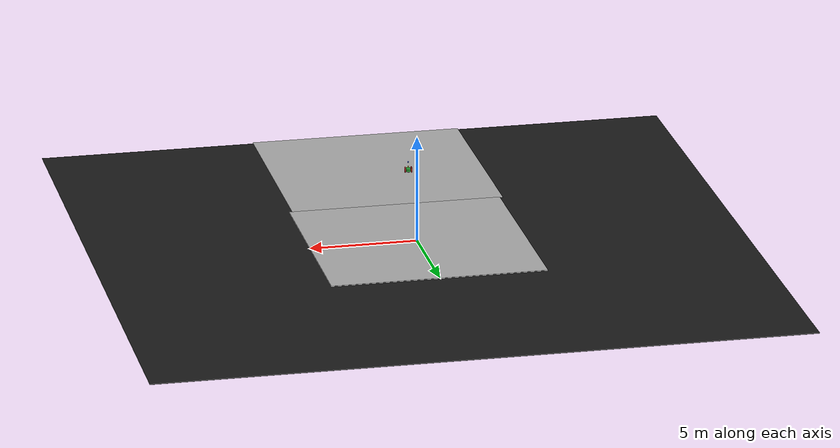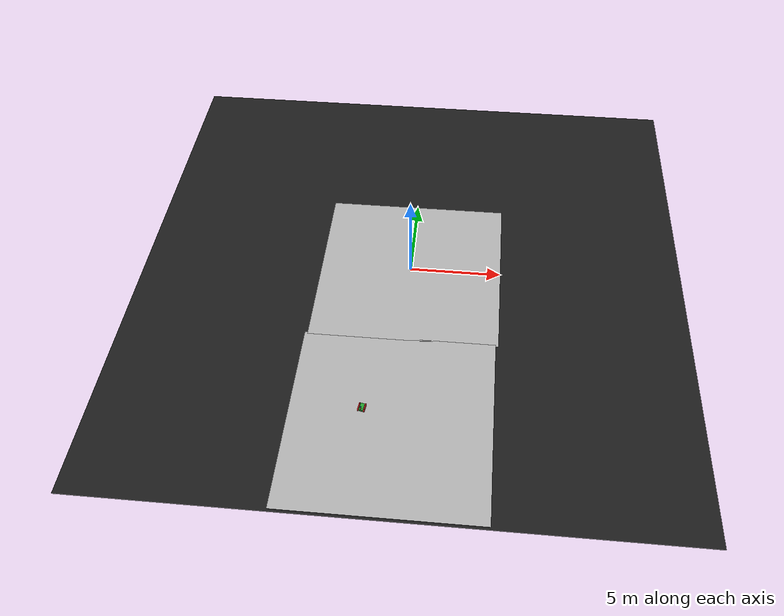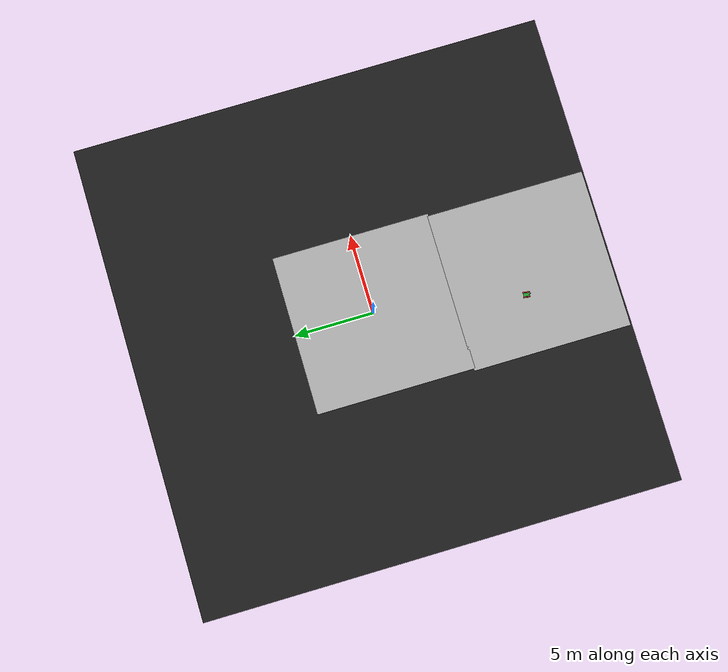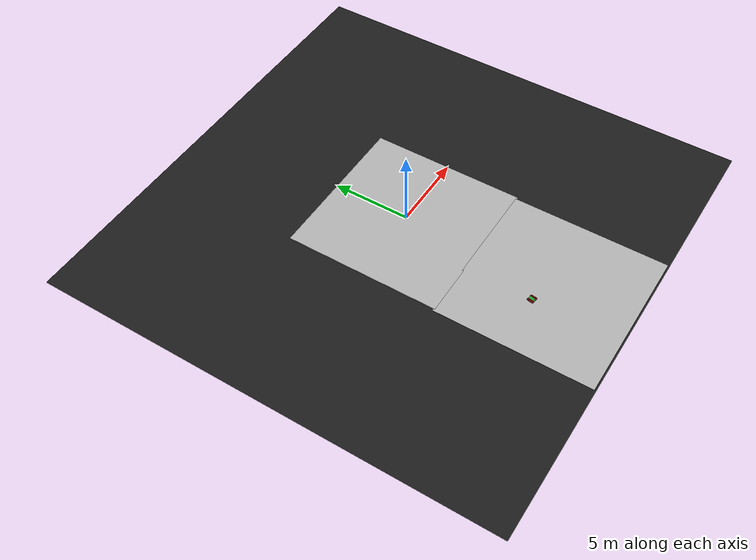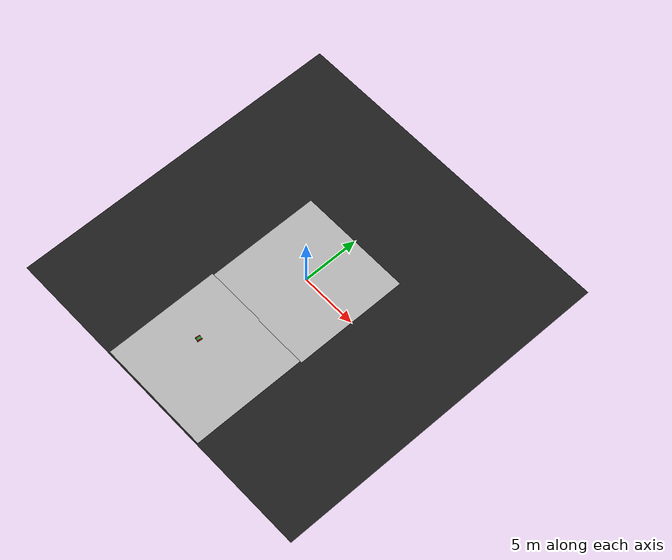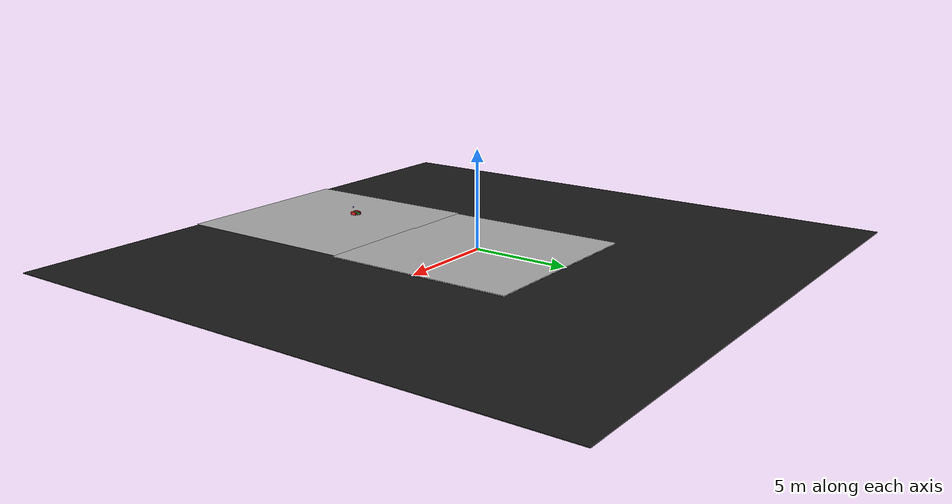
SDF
<sdf version="1.7">
 <world name="track_sample">
  <scene><ambient>0.4 0.4 0.4 1</ambient><background>0.7 0.7 0.7 1</background><shadows>0</shadows></scene>
  <light name="sun" type="directional">
   <pose>0 0 10 0 -0 0</pose>
   <diffuse>0.8 0.8 0.8 1</diffuse>
   <specular>0.2 0.2 0.2 1</specular>
   <attenuation>
    <range>1000</range>
    <constant>0.9</constant>
    <linear>0.01</linear>
    <quadratic>0.001</quadratic>
   </attenuation>
   <direction>-0.5 0.1 -0.9</direction>
   <spot><inner_angle>0</inner_angle><outer_angle>0</outer_angle><falloff>0</falloff></spot>
  </light>
  <model name="track_sample">
   <static>1</static>
   <link name="link_ground">
    <visual name="visual_ground">
     <geometry><plane><normal>0 0 1</normal><size>10 10</size></plane></geometry>
     <material>
      <script>
       <uri>model://track_sample/materials/scripts</uri>
       <uri>model://track_sample/materials/textures</uri>
       <name>TrackSample/Image</name>
      </script>
     </material>
    </visual>
    <collision name="collision">
     <geometry><plane><normal>0 0 1</normal><size>10 10</size></plane></geometry>
    </collision>
   </link>
  </model>
  <model name="track_ground">
   <static>1</static>
   <link name="link_ground">
    <visual name="visual_ground">
     <geometry><plane><normal>0 0 1</normal><size>30 30</size></plane></geometry>
     <material>
      <script><uri>file://media/materials/scripts/gazebo.material</uri><name>Gazebo/Black</name></script>
     </material>
    </visual>
    <collision name="collision">
     <geometry><plane><normal>0 0 1</normal><size>30 30</size></plane></geometry>
    </collision>
   </link>
   <pose>0 0 -0.1 0 -0 0</pose>
  </model>
  <model name="track_s">
   <static>1</static>
   <link name="link_ground">
    <visual name="visual_ground">
     <geometry><plane><normal>0 0 1</normal><size>10 10</size></plane></geometry>
     <material>
      <script>
       <uri>model://track_s/materials/scripts</uri>
       <uri>model://track_s/materials/textures</uri>
       <name>TrackSSample/Image</name>
      </script>
     </material>
    </visual>
    <collision name="collision">
     <geometry><plane><normal>0 0 1</normal><size>10 10</size></plane></geometry>
    </collision>
   </link>
  </model>
  <physics type="ode">
   <real_time_update_rate>1000</real_time_update_rate>
   <max_step_size>0.001</max_step_size>
   <real_time_factor>1</real_time_factor>
   <ode>
    <solver>
     <type>quick</type>
     <iters>150</iters>
     <precon_iters>0</precon_iters>
     <sor>1.4</sor>
     <use_dynamic_moi_rescaling>1</use_dynamic_moi_rescaling>
    </solver>
    <constraints>
     <cfm>1e-05</cfm>
     <erp>0.2</erp>
     <contact_max_correcting_vel>2000</contact_max_correcting_vel>
     <contact_surface_layer>0.01</contact_surface_layer>
    </constraints>
   </ode>
  </physics>
  <gravity>0 0 -9.8</gravity>
  <magnetic_field>6e-06 2.3e-05 -4.2e-05</magnetic_field>
  <atmosphere type="adiabatic"/>
  <spherical_coordinates>
   <surface_model>EARTH_WGS84</surface_model>
   <latitude_deg>0</latitude_deg>
   <longitude_deg>0</longitude_deg>
   <elevation>0</elevation>
   <heading_deg>0</heading_deg>
  </spherical_coordinates>
  <model name="track_test">
   <link name="testcar_footprint">
    <inertial>
     <pose>0.002657 0.000495 0.002789 0 -0 0</pose>
     <mass>10.1</mass>
     <inertia>
      <ixx>0.108107</ixx>
      <ixy>-0.00132824</ixy>
      <ixz>-0.00748378</ixz>
      <iyy>0.114987</iyy>
      <iyz>-0.00139461</iyz>
      <izz>0.107377</izz>
     </inertia>
    </inertial>
    <collision name="testcar_footprint_fixed_joint_lump__collision_collision">
     <geometry><box><size>0.4 0.2 0.1</size></box></geometry>
    </collision>
    <collision name="testcar_footprint_fixed_joint_lump__back_caster_collision_collision_1">
     <pose>-0.15 0 -0.05 0 -0 0</pose>
     <geometry><sphere><radius>0.05</radius></sphere></geometry>
    </collision>
    <collision name="testcar_footprint_fixed_joint_lump__front_caster_collision_collision_2">
     <pose>0.15 0 -0.05 0 -0 0</pose>
     <geometry><sphere><radius>0.05</radius></sphere></geometry>
    </collision>
    <collision name="testcar_footprint_fixed_joint_lump__camera_colision_collision_3">
     <pose>0.2 0 0.3 0 1.047 0</pose>
     <geometry><box><size>0.05 0.05 0.05</size></box></geometry>
    </collision>
    <collision name="testcar_footprint_fixed_joint_lump__hokuyo_colision_collision_4">
     <pose>0.15 0 0.1 0 -0 0</pose>
     <geometry><box><size>0.1 0.1 0.1</size></box></geometry>
    </collision>
    <visual name="testcar_footprint_fixed_joint_lump__chassis_visual_visual">
     <geometry><box><size>0.4 0.2 0.1</size></box></geometry>
     <material>
      <script><name>Gazebo/Green</name><uri>file://media/materials/scripts/gazebo.material</uri></script>
     </material>
    </visual>
    <visual name="testcar_footprint_fixed_joint_lump__back_caster_visual_visual_1">
     <pose>-0.15 0 -0.05 0 -0 0</pose>
     <geometry><sphere><radius>0.05</radius></sphere></geometry>
    </visual>
    <visual name="testcar_footprint_fixed_joint_lump__front_caster_visual_visual_2">
     <pose>0.15 0 -0.05 0 -0 0</pose>
     <geometry><sphere><radius>0.05</radius></sphere></geometry>
    </visual>
    <visual name="testcar_footprint_fixed_joint_lump__camera_visual_visual_3">
     <pose>0.2 0 0.3 0 1.047 0</pose>
     <geometry><box><size>0.05 0.05 0.05</size></box></geometry>
     <material>
      <script><name>Gazebo/Blue</name><uri>file://media/materials/scripts/gazebo.material</uri></script>
     </material>
    </visual>
    <visual name="testcar_footprint_fixed_joint_lump__hokuyo_visual_visual_4">
     <pose>0.15 0 0.1 0 -0 0</pose>
     <geometry><box><size>0.05 0.05 0.05</size></box></geometry>
     <material>
      <script><name>Gazebo/Yellow</name><uri>file://media/materials/scripts/gazebo.material</uri></script>
     </material>
    </visual>
    <visual name="testcar_footprint_fixed_joint_lump__left_track_visual_visual_5">
     <pose>0 0.15 0 1.5708 -0 1.5708</pose>
     <geometry><box><size>0.05 0.2 0.26</size></box></geometry>
     <material>
      <script><name>Gazebo/Red</name><uri>file://media/materials/scripts/gazebo.material</uri></script>
     </material>
    </visual>
    <visual name="testcar_footprint_fixed_joint_lump__left_track_visual_1_visual_6">
     <pose>0.13 0.15 0 1.5708 -0 0</pose>
     <geometry><cylinder><length>0.05</length><radius>0.1</radius></cylinder></geometry>
     <material>
      <script><name>Gazebo/Red</name><uri>file://media/materials/scripts/gazebo.material</uri></script>
     </material>
    </visual>
    <visual name="testcar_footprint_fixed_joint_lump__left_track_visual_2_visual_7">
     <pose>-0.13 0.15 0 1.5708 -0 0</pose>
     <geometry><cylinder><length>0.05</length><radius>0.1</radius></cylinder></geometry>
     <material>
      <script><name>Gazebo/Red</name><uri>file://media/materials/scripts/gazebo.material</uri></script>
     </material>
    </visual>
    <visual name="testcar_footprint_fixed_joint_lump__right_track_visual_visual_8">
     <pose>0 -0.15 0 1.5708 -0 1.5708</pose>
     <geometry><box><size>0.05 0.2 0.26</size></box></geometry>
     <material>
      <script><name>Gazebo/Red</name><uri>file://media/materials/scripts/gazebo.material</uri></script>
     </material>
    </visual>
    <visual name="testcar_footprint_fixed_joint_lump__right_track_visual_1_visual_9">
     <pose>0.13 -0.15 0 1.5708 -0 0</pose>
     <geometry><cylinder><length>0.05</length><radius>0.1</radius></cylinder></geometry>
     <material>
      <script><name>Gazebo/Red</name><uri>file://media/materials/scripts/gazebo.material</uri></script>
     </material>
    </visual>
    <visual name="testcar_footprint_fixed_joint_lump__right_track_visual_2_visual_10">
     <pose>-0.13 -0.15 0 1.5708 -0 0</pose>
     <geometry><cylinder><length>0.05</length><radius>0.1</radius></cylinder></geometry>
     <material>
      <script><name>Gazebo/Red</name><uri>file://media/materials/scripts/gazebo.material</uri></script>
     </material>
    </visual>
    <sensor name="camera_sensor" type="camera">
     <update_rate>30</update_rate>
     <always_on>1</always_on>
     <camera name="camera">
      <horizontal_fov>1.39626</horizontal_fov>
      <image><width>640</width><height>480</height><format>R8G8B8</format></image>
      <clip><near>0.02</near><far>300</far></clip>
      <distortion><k1>0</k1><k2>0</k2><k3>0</k3><p1>0</p1><p2>0</p2><center>0.5 0.5</center></distortion>
     </camera>
     <plugin name="camera_controller" filename="libgazebo_ros_camera.so">
      <ros>
       <namespace>/testcar</namespace>
       <argument>camera/image_raw:=/testcar/camera/image</argument>
       <argument>camera/camera_info:=/testcar/camera/image/camera_info</argument>
      </ros>
      <camera_name>camera_sensor</camera_name>
      <frame_name>testcar_footprint</frame_name>
      <hack_baseline>0.07</hack_baseline>
     </plugin>
     <pose>0.2 0 0.3 0 1.047 0</pose>
    </sensor>
    <sensor name="head_hokuyo_sensor" type="ray">
     <visualize>0</visualize>
     <update_rate>40</update_rate>
     <ray>
      <scan>
       <horizontal>
        <samples>720</samples>
        <resolution>1</resolution>
        <min_angle>-1.5708</min_angle>
        <max_angle>1.5708</max_angle>
       </horizontal>
       <vertical><samples>1</samples><min_angle>0</min_angle><max_angle>0</max_angle></vertical>
      </scan>
      <range><min>0.1</min><max>30</max><resolution>0.01</resolution></range>
      <noise><type>gaussian</type><mean>0</mean><stddev>0.01</stddev></noise>
     </ray>
     <update_rate>30</update_rate>
     <plugin name="gazebo_ros_head_hokuyo_controller" filename="libgazebo_ros_ray_sensor.so">
      <ros><namespace>/testcar</namespace><argument>~/out:=scan</argument></ros>
      <output_type>sensor_msgs/LaserScan</output_type>
     </plugin>
     <pose>0.15 0 0.1 0 -0 0</pose>
    </sensor>
   </link>
   <joint name="front_left_wheel_joint" type="revolute">
    <pose relative_to="testcar_footprint">0 0.15 0 0 -0 0</pose>
    <parent>testcar_footprint</parent>
    <child>front_left_wheel</child>
    <axis>
     <xyz>0 1 0</xyz>
     <limit><effort>10000</effort><velocity>1000</velocity><lower>-1e+16</lower><upper>1e+16</upper></limit>
     <dynamics>
      <damping>1</damping>
      <friction>1</friction>
      <spring_reference>0</spring_reference>
      <spring_stiffness>0</spring_stiffness>
     </dynamics>
    </axis>
   </joint>
   <link name="front_left_wheel">
    <pose relative_to="front_left_wheel_joint">0 0 0 0 -0 0</pose>
    <inertial>
     <pose>0 0 0 -0 1.5707 1.5707</pose>
     <mass>5</mass>
     <inertia><ixx>0.1</ixx><ixy>0</ixy><ixz>0</ixz><iyy>0.1</iyy><iyz>0</iyz><izz>0.1</izz></inertia>
    </inertial>
    <collision name="front_left_wheel_collision">
     <pose>0 0 0 1.57089 1.57079 -3.14159</pose>
     <geometry><cylinder><length>0.05</length><radius>0.1</radius></cylinder></geometry>
    </collision>
   </link>
   <joint name="front_right_wheel_joint" type="revolute">
    <pose relative_to="testcar_footprint">0 -0.15 0 0 -0 0</pose>
    <parent>testcar_footprint</parent>
    <child>front_right_wheel</child>
    <axis>
     <xyz>0 1 0</xyz>
     <limit><effort>10000</effort><velocity>1000</velocity><lower>-1e+16</lower><upper>1e+16</upper></limit>
     <dynamics>
      <damping>1</damping>
      <friction>1</friction>
      <spring_reference>0</spring_reference>
      <spring_stiffness>0</spring_stiffness>
     </dynamics>
    </axis>
   </joint>
   <link name="front_right_wheel">
    <pose relative_to="front_right_wheel_joint">0 0 0 0 -0 0</pose>
    <inertial>
     <pose>0 0 0 -0 1.5707 1.5707</pose>
     <mass>8</mass>
     <inertia><ixx>0.1</ixx><ixy>0</ixy><ixz>0</ixz><iyy>0.1</iyy><iyz>0</iyz><izz>0.1</izz></inertia>
    </inertial>
    <collision name="front_right_wheel_collision">
     <pose>0 0 0 1.57089 1.57079 -3.14159</pose>
     <geometry><cylinder><length>0.05</length><radius>0.1</radius></cylinder></geometry>
    </collision>
   </link>
   <plugin name="diff_drive" filename="libgazebo_ros_diff_drive.so">
    <ros><namespace>/testcar</namespace></ros>
    <left_joint>front_left_wheel_joint</left_joint>
    <right_joint>front_right_wheel_joint</right_joint>
    <wheel_separation>0.4</wheel_separation>
    <wheel_diameter>0.2</wheel_diameter>
    <max_wheel_torque>10</max_wheel_torque>
    <max_wheel_acceleration>1.0</max_wheel_acceleration>
    <publish_odom>1</publish_odom>
    <publish_odom_tf>1</publish_odom_tf>
    <publish_wheel_tf>1</publish_wheel_tf>
    <odometry_frame>odom</odometry_frame>
    <robot_base_frame>testcar_footprint</robot_base_frame>
   </plugin>
   <frame name="camera_joint" attached_to="chassis"><pose>0.2 0 0.3 0 1.047 0</pose></frame>
   <frame name="camera" attached_to="camera_joint"/>
   <frame name="hokuyo_joint" attached_to="chassis"><pose>0.15 0 0.1 0 -0 0</pose></frame>
   <frame name="hokuyo" attached_to="hokuyo_joint"/>
   <frame name="left_track_j" attached_to="chassis"><pose>0 0.15 0 0 -0 0</pose></frame>
   <frame name="left_track" attached_to="left_track_j"/>
   <frame name="right_track_j" attached_to="chassis"><pose>0 -0.15 0 0 -0 0</pose></frame>
   <frame name="right_track" attached_to="right_track_j"/>
   <frame name="testcar_footprint_joint" attached_to="testcar_footprint"/>
   <frame name="chassis" attached_to="testcar_footprint_joint"/>
   <pose>-1.56205 -9.33398 0.1 2e-06 -0 -1.71526</pose>
  </model>
  <model name="track_s_0">
   <static>1</static>
   <link name="link_ground">
    <visual name="visual_ground">
     <geometry><plane><normal>0 0 1</normal><size>10 10</size></plane></geometry>
     <material>
      <script>
       <uri>model://track_s/materials/scripts</uri>
       <uri>model://track_s/materials/textures</uri>
       <name>TrackSSample/Image</name>
      </script>
     </material>
    </visual>
    <collision name="collision">
     <geometry><plane><normal>0 0 1</normal><size>10 10</size></plane></geometry>
    </collision>
   </link>
   <pose>-0.144158 -9.90929 0 0 -0 0</pose>
  </model>
 </world>
</sdf>
